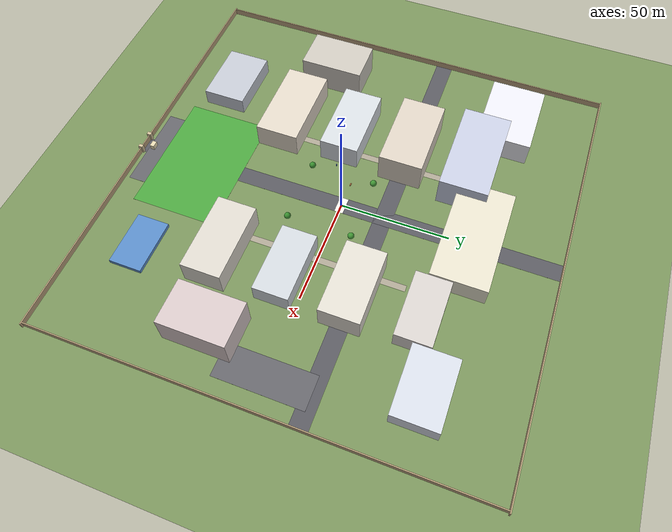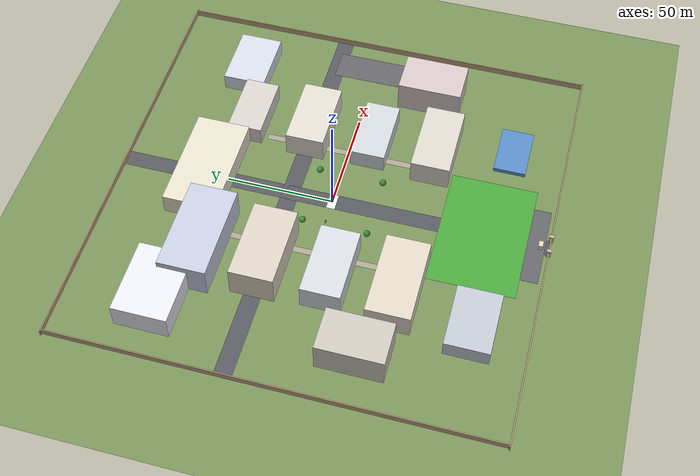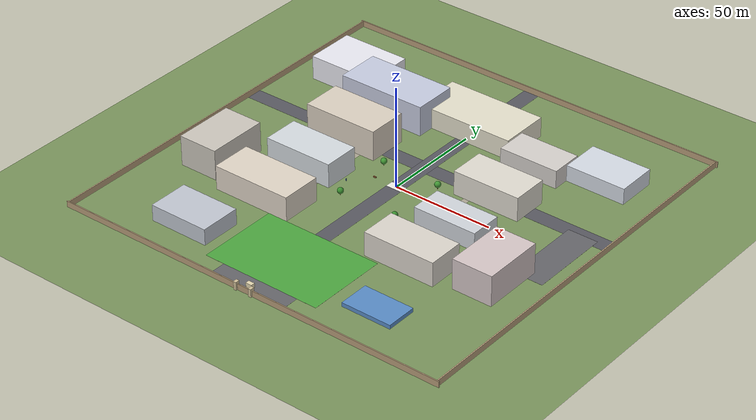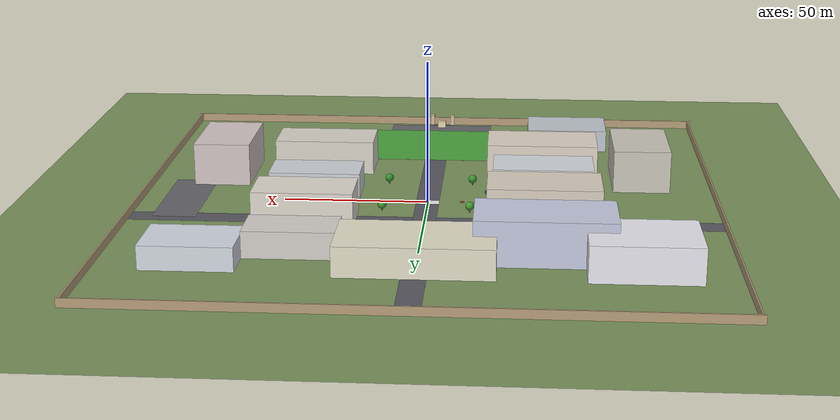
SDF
<?xml version="1.0" ?>
<sdf version="1.8">
  <world name="lpu_campus">
    <physics name="4ms" type="ignored">
      <max_step_size>0.004</max_step_size>
      <real_time_factor>1.0</real_time_factor>
    </physics>

    <plugin filename="gz-sim-physics-system" name="gz::sim::systems::Physics"/>
    <plugin filename="gz-sim-user-commands-system" name="gz::sim::systems::UserCommands"/>
    <plugin filename="gz-sim-scene-broadcaster-system" name="gz::sim::systems::SceneBroadcaster"/>
    <plugin filename="gz-sim-contact-system" name="gz::sim::systems::Contact"/>
    <plugin filename="gz-sim-sensors-system" name="gz::sim::systems::Sensors">
      <render_engine>ogre2</render_engine>
    </plugin>
    <plugin filename="gz-sim-imu-system" name="gz::sim::systems::Imu"/>

    <gravity>0 0 -9.8</gravity>
    <magnetic_field>6e-06 2.3e-05 -4.2e-05</magnetic_field>
    <atmosphere type="adiabatic"/>

    <!-- ===================== SCENE & LIGHTING ===================== -->
    <scene>
      <ambient>0.55 0.55 0.6 1</ambient>
      <background>0.72 0.82 0.92 1</background>
      <shadows>true</shadows>
    </scene>

    <light type="directional" name="sun">
      <cast_shadows>true</cast_shadows>
      <pose>50 50 80 0 0 0</pose>
      <diffuse>0.95 0.92 0.85 1</diffuse>
      <specular>0.3 0.3 0.3 1</specular>
      <direction>-0.4 0.2 -0.9</direction>
    </light>

    <light type="directional" name="fill_light">
      <cast_shadows>false</cast_shadows>
      <pose>-50 -50 60 0 0 0</pose>
      <diffuse>0.3 0.32 0.38 1</diffuse>
      <specular>0.05 0.05 0.05 1</specular>
      <direction>0.3 -0.2 -0.8</direction>
    </light>

    <!-- ===================== GROUND PLANE ===================== -->
    <model name="ground_plane">
      <static>true</static>
      <link name="link">
        <collision name="collision">
          <geometry><plane><normal>0 0 1</normal><size>400 400</size></plane></geometry>
        </collision>
        <visual name="visual">
          <geometry><plane><normal>0 0 1</normal><size>400 400</size></plane></geometry>
          <material>
            <ambient>0.42 0.52 0.32 1</ambient>
            <diffuse>0.48 0.58 0.36 1</diffuse>
          </material>
        </visual>
      </link>
    </model>

    <!-- ===================== CAMPUS BOUNDARY WALL ===================== -->
    <!-- Approximate 200m x 200m campus area boundary -->
    <model name="boundary_north">
      <static>true</static>
      <pose>0 100 1.5 0 0 0</pose>
      <link name="link">
        <collision name="c"><geometry><box><size>202 0.5 3</size></box></geometry></collision>
        <visual name="v">
          <geometry><box><size>202 0.5 3</size></box></geometry>
          <material><ambient>0.65 0.55 0.40 1</ambient><diffuse>0.72 0.62 0.48 1</diffuse></material>
        </visual>
      </link>
    </model>
    <model name="boundary_south">
      <static>true</static>
      <pose>0 -100 1.5 0 0 0</pose>
      <link name="link">
        <collision name="c"><geometry><box><size>202 0.5 3</size></box></geometry></collision>
        <visual name="v">
          <geometry><box><size>202 0.5 3</size></box></geometry>
          <material><ambient>0.65 0.55 0.40 1</ambient><diffuse>0.72 0.62 0.48 1</diffuse></material>
        </visual>
      </link>
    </model>
    <model name="boundary_east">
      <static>true</static>
      <pose>100 0 1.5 0 0 0</pose>
      <link name="link">
        <collision name="c"><geometry><box><size>0.5 200 3</size></box></geometry></collision>
        <visual name="v">
          <geometry><box><size>0.5 200 3</size></box></geometry>
          <material><ambient>0.65 0.55 0.40 1</ambient><diffuse>0.72 0.62 0.48 1</diffuse></material>
        </visual>
      </link>
    </model>
    <model name="boundary_west">
      <static>true</static>
      <pose>-100 0 1.5 0 0 0</pose>
      <link name="link">
        <collision name="c"><geometry><box><size>0.5 200 3</size></box></geometry></collision>
        <visual name="v">
          <geometry><box><size>0.5 200 3</size></box></geometry>
          <material><ambient>0.65 0.55 0.40 1</ambient><diffuse>0.72 0.62 0.48 1</diffuse></material>
        </visual>
      </link>
    </model>

    <!-- ===================== MAIN GATE ===================== -->
    <!-- Gate 1 (Main Entrance) — south side -->
    <model name="main_gate_pillar_left">
      <static>true</static>
      <pose>-4 -100 2 0 0 0</pose>
      <link name="link">
        <collision name="c"><geometry><box><size>1.5 2 4</size></box></geometry></collision>
        <visual name="v">
          <geometry><box><size>1.5 2 4</size></box></geometry>
          <material><ambient>0.75 0.68 0.55 1</ambient><diffuse>0.82 0.75 0.60 1</diffuse></material>
        </visual>
      </link>
    </model>
    <model name="main_gate_pillar_right">
      <static>true</static>
      <pose>4 -100 2 0 0 0</pose>
      <link name="link">
        <collision name="c"><geometry><box><size>1.5 2 4</size></box></geometry></collision>
        <visual name="v">
          <geometry><box><size>1.5 2 4</size></box></geometry>
          <material><ambient>0.75 0.68 0.55 1</ambient><diffuse>0.82 0.75 0.60 1</diffuse></material>
        </visual>
      </link>
    </model>

    <!-- ===================== MAIN ROAD (North-South through campus) ===================== -->
    <model name="main_road">
      <static>true</static>
      <pose>0 0 0.005 0 0 0</pose>
      <link name="link">
        <collision name="c"><geometry><box><size>8 200 0.01</size></box></geometry></collision>
        <visual name="v">
          <geometry><box><size>8 200 0.01</size></box></geometry>
          <material><ambient>0.30 0.30 0.32 1</ambient><diffuse>0.35 0.35 0.38 1</diffuse></material>
        </visual>
      </link>
    </model>

    <!-- Cross road (East-West) -->
    <model name="cross_road">
      <static>true</static>
      <pose>0 20 0.005 0 0 0</pose>
      <link name="link">
        <collision name="c"><geometry><box><size>200 8 0.01</size></box></geometry></collision>
        <visual name="v">
          <geometry><box><size>200 8 0.01</size></box></geometry>
          <material><ambient>0.30 0.30 0.32 1</ambient><diffuse>0.35 0.35 0.38 1</diffuse></material>
        </visual>
      </link>
    </model>

    <!-- Pedestrian pathways -->
    <model name="pathway_block34_to_37">
      <static>true</static>
      <pose>-30 0 0.008 0 0 0</pose>
      <link name="link">
        <visual name="v">
          <geometry><box><size>3 80 0.01</size></box></geometry>
          <material><ambient>0.60 0.58 0.52 1</ambient><diffuse>0.68 0.65 0.58 1</diffuse></material>
        </visual>
      </link>
    </model>
    <model name="pathway_east_blocks">
      <static>true</static>
      <pose>30 0 0.008 0 0 0</pose>
      <link name="link">
        <visual name="v">
          <geometry><box><size>3 80 0.01</size></box></geometry>
          <material><ambient>0.60 0.58 0.52 1</ambient><diffuse>0.68 0.65 0.58 1</diffuse></material>
        </visual>
      </link>
    </model>

    <!-- ===================== ACADEMIC BLOCKS ===================== -->
    <!-- Block 34 — Academic (approximate: 40m x 20m, 4 floors) -->
    <model name="block_34">
      <static>true</static>
      <pose>-40 -40 6 0 0 0</pose>
      <link name="link">
        <collision name="c"><geometry><box><size>40 20 12</size></box></geometry></collision>
        <visual name="v">
          <geometry><box><size>40 20 12</size></box></geometry>
          <material><ambient>0.82 0.78 0.72 1</ambient><diffuse>0.88 0.84 0.78 1</diffuse></material>
        </visual>
      </link>
    </model>

    <!-- Block 35 — Academic (approximate: 35m x 18m, 4 floors) -->
    <model name="block_35">
      <static>true</static>
      <pose>-40 -10 6 0 0 0</pose>
      <link name="link">
        <collision name="c"><geometry><box><size>35 18 12</size></box></geometry></collision>
        <visual name="v">
          <geometry><box><size>35 18 12</size></box></geometry>
          <material><ambient>0.78 0.80 0.82 1</ambient><diffuse>0.84 0.86 0.88 1</diffuse></material>
        </visual>
      </link>
    </model>

    <!-- Block 36 — Academic (approximate: 38m x 20m, 5 floors) -->
    <model name="block_36">
      <static>true</static>
      <pose>-40 20 7.5 0 0 0</pose>
      <link name="link">
        <collision name="c"><geometry><box><size>38 20 15</size></box></geometry></collision>
        <visual name="v">
          <geometry><box><size>38 20 15</size></box></geometry>
          <material><ambient>0.80 0.76 0.70 1</ambient><diffuse>0.86 0.82 0.76 1</diffuse></material>
        </visual>
      </link>
    </model>

    <!-- Block 37 — Academic + CENTRAL LIBRARY (approximate: 45m x 22m, 5 floors) -->
    <!-- The Central Library is verified to be in Block 37 per official LPU sources -->
    <model name="block_37_central_library">
      <static>true</static>
      <pose>-40 50 7.5 0 0 0</pose>
      <link name="link">
        <collision name="c"><geometry><box><size>45 22 15</size></box></geometry></collision>
        <visual name="v">
          <geometry><box><size>45 22 15</size></box></geometry>
          <material><ambient>0.72 0.74 0.80 1</ambient><diffuse>0.78 0.80 0.88 1</diffuse></material>
        </visual>
      </link>
    </model>

    <!-- Block 38 — Academic (approximate: 36m x 18m, 4 floors) -->
    <model name="block_38">
      <static>true</static>
      <pose>40 -40 6 0 0 0</pose>
      <link name="link">
        <collision name="c"><geometry><box><size>36 18 12</size></box></geometry></collision>
        <visual name="v">
          <geometry><box><size>36 18 12</size></box></geometry>
          <material><ambient>0.80 0.78 0.74 1</ambient><diffuse>0.86 0.84 0.80 1</diffuse></material>
        </visual>
      </link>
    </model>

    <!-- Block 39 — Academic / Research (approximate: 32m x 16m, 3 floors) -->
    <model name="block_39">
      <static>true</static>
      <pose>40 -10 4.5 0 0 0</pose>
      <link name="link">
        <collision name="c"><geometry><box><size>32 16 9</size></box></geometry></collision>
        <visual name="v">
          <geometry><box><size>32 16 9</size></box></geometry>
          <material><ambient>0.76 0.78 0.80 1</ambient><diffuse>0.82 0.84 0.86 1</diffuse></material>
        </visual>
      </link>
    </model>

    <!-- Block 40 — Academic (approximate: 34m x 18m, 4 floors) -->
    <model name="block_40">
      <static>true</static>
      <pose>40 20 6 0 0 0</pose>
      <link name="link">
        <collision name="c"><geometry><box><size>34 18 12</size></box></geometry></collision>
        <visual name="v">
          <geometry><box><size>34 18 12</size></box></geometry>
          <material><ambient>0.82 0.80 0.76 1</ambient><diffuse>0.88 0.86 0.82 1</diffuse></material>
        </visual>
      </link>
    </model>

    <!-- Block 41 — Academic / Labs (approximate: 30m x 16m, 3 floors) -->
    <model name="block_41">
      <static>true</static>
      <pose>40 50 4.5 0 0 0</pose>
      <link name="link">
        <collision name="c"><geometry><box><size>30 16 9</size></box></geometry></collision>
        <visual name="v">
          <geometry><box><size>30 16 9</size></box></geometry>
          <material><ambient>0.78 0.76 0.74 1</ambient><diffuse>0.84 0.82 0.80 1</diffuse></material>
        </visual>
      </link>
    </model>

    <!-- ===================== UNI-MALL (Commercial) ===================== -->
    <model name="uni_mall">
      <static>true</static>
      <pose>0 60 5 0 0 0</pose>
      <link name="link">
        <collision name="c"><geometry><box><size>50 25 10</size></box></geometry></collision>
        <visual name="v">
          <geometry><box><size>50 25 10</size></box></geometry>
          <material><ambient>0.85 0.82 0.75 1</ambient><diffuse>0.90 0.88 0.80 1</diffuse></material>
        </visual>
      </link>
    </model>

    <!-- ===================== UNI-POLIS ===================== -->
    <model name="uni_polis">
      <static>true</static>
      <pose>70 60 4 0 0 0</pose>
      <link name="link">
        <collision name="c"><geometry><box><size>30 20 8</size></box></geometry></collision>
        <visual name="v">
          <geometry><box><size>30 20 8</size></box></geometry>
          <material><ambient>0.78 0.80 0.85 1</ambient><diffuse>0.84 0.86 0.90 1</diffuse></material>
        </visual>
      </link>
    </model>

    <!-- ===================== UNI-HOSPITAL ===================== -->
    <model name="uni_hospital">
      <static>true</static>
      <pose>-70 60 6 0 0 0</pose>
      <link name="link">
        <collision name="c"><geometry><box><size>35 25 12</size></box></geometry></collision>
        <visual name="v">
          <geometry><box><size>35 25 12</size></box></geometry>
          <material><ambient>0.88 0.88 0.90 1</ambient><diffuse>0.92 0.92 0.95 1</diffuse></material>
        </visual>
      </link>
    </model>

    <!-- ===================== HOSTELS ===================== -->
    <!-- Boys Hostel Complex (West side) -->
    <model name="boys_hostel_1">
      <static>true</static>
      <pose>-75 -30 7.5 0 0 0</pose>
      <link name="link">
        <collision name="c"><geometry><box><size>20 30 15</size></box></geometry></collision>
        <visual name="v">
          <geometry><box><size>20 30 15</size></box></geometry>
          <material><ambient>0.75 0.72 0.68 1</ambient><diffuse>0.80 0.78 0.74 1</diffuse></material>
        </visual>
      </link>
    </model>
    <!-- Girls Hostel Complex (East side) -->
    <model name="girls_hostel_1">
      <static>true</static>
      <pose>75 -30 7.5 0 0 0</pose>
      <link name="link">
        <collision name="c"><geometry><box><size>20 30 15</size></box></geometry></collision>
        <visual name="v">
          <geometry><box><size>20 30 15</size></box></geometry>
          <material><ambient>0.78 0.72 0.72 1</ambient><diffuse>0.84 0.78 0.78 1</diffuse></material>
        </visual>
      </link>
    </model>

    <!-- ===================== SPORTS COMPLEX ===================== -->
    <!-- Football/Cricket Field -->
    <model name="sports_field">
      <static>true</static>
      <pose>0 -70 0.01 0 0 0</pose>
      <link name="link">
        <visual name="v">
          <geometry><box><size>60 40 0.02</size></box></geometry>
          <material><ambient>0.25 0.55 0.20 1</ambient><diffuse>0.30 0.65 0.25 1</diffuse></material>
        </visual>
      </link>
    </model>
    <!-- Indoor Sports Complex -->
    <model name="indoor_sports">
      <static>true</static>
      <pose>-50 -75 4 0 0 0</pose>
      <link name="link">
        <collision name="c"><geometry><box><size>30 20 8</size></box></geometry></collision>
        <visual name="v">
          <geometry><box><size>30 20 8</size></box></geometry>
          <material><ambient>0.70 0.72 0.75 1</ambient><diffuse>0.76 0.78 0.82 1</diffuse></material>
        </visual>
      </link>
    </model>
    <!-- Swimming Pool Complex -->
    <model name="swimming_pool">
      <static>true</static>
      <pose>50 -75 1 0 0 0</pose>
      <link name="link">
        <collision name="c"><geometry><box><size>25 15 2</size></box></geometry></collision>
        <visual name="v">
          <geometry><box><size>25 15 2</size></box></geometry>
          <material><ambient>0.30 0.50 0.70 1</ambient><diffuse>0.35 0.55 0.78 1</diffuse></material>
        </visual>
      </link>
    </model>

    <!-- ===================== PARKING AREAS ===================== -->
    <model name="parking_main">
      <static>true</static>
      <pose>0 -92 0.008 0 0 0</pose>
      <link name="link">
        <visual name="v">
          <geometry><box><size>40 12 0.02</size></box></geometry>
          <material><ambient>0.35 0.35 0.35 1</ambient><diffuse>0.40 0.40 0.42 1</diffuse></material>
        </visual>
      </link>
    </model>
    <model name="parking_east">
      <static>true</static>
      <pose>85 0 0.008 0 0 0</pose>
      <link name="link">
        <visual name="v">
          <geometry><box><size>15 40 0.02</size></box></geometry>
          <material><ambient>0.35 0.35 0.35 1</ambient><diffuse>0.40 0.40 0.42 1</diffuse></material>
        </visual>
      </link>
    </model>

    <!-- ===================== TREES & LANDSCAPING ===================== -->
    <model name="tree_row_1"><static>true</static>
      <pose>-15 -20 1.5 0 0 0</pose>
      <link name="link">
        <collision name="c"><geometry><cylinder><radius>0.4</radius><length>3</length></cylinder></geometry></collision>
        <visual name="trunk"><pose>0 0 -0.5 0 0 0</pose>
          <geometry><cylinder><radius>0.15</radius><length>2</length></cylinder></geometry>
          <material><ambient>0.40 0.25 0.12 1</ambient><diffuse>0.50 0.30 0.15 1</diffuse></material>
        </visual>
        <visual name="canopy"><pose>0 0 0.8 0 0 0</pose>
          <geometry><sphere><radius>1.5</radius></sphere></geometry>
          <material><ambient>0.18 0.45 0.15 1</ambient><diffuse>0.22 0.55 0.18 1</diffuse></material>
        </visual>
      </link>
    </model>
    <model name="tree_row_2"><static>true</static>
      <pose>15 -20 1.5 0 0 0</pose>
      <link name="link">
        <collision name="c"><geometry><cylinder><radius>0.4</radius><length>3</length></cylinder></geometry></collision>
        <visual name="trunk"><pose>0 0 -0.5 0 0 0</pose>
          <geometry><cylinder><radius>0.15</radius><length>2</length></cylinder></geometry>
          <material><ambient>0.40 0.25 0.12 1</ambient><diffuse>0.50 0.30 0.15 1</diffuse></material>
        </visual>
        <visual name="canopy"><pose>0 0 0.8 0 0 0</pose>
          <geometry><sphere><radius>1.5</radius></sphere></geometry>
          <material><ambient>0.18 0.45 0.15 1</ambient><diffuse>0.22 0.55 0.18 1</diffuse></material>
        </visual>
      </link>
    </model>
    <model name="tree_row_3"><static>true</static>
      <pose>-15 10 1.5 0 0 0</pose>
      <link name="link">
        <collision name="c"><geometry><cylinder><radius>0.4</radius><length>3</length></cylinder></geometry></collision>
        <visual name="trunk"><pose>0 0 -0.5 0 0 0</pose>
          <geometry><cylinder><radius>0.15</radius><length>2</length></cylinder></geometry>
          <material><ambient>0.40 0.25 0.12 1</ambient><diffuse>0.50 0.30 0.15 1</diffuse></material>
        </visual>
        <visual name="canopy"><pose>0 0 0.8 0 0 0</pose>
          <geometry><sphere><radius>1.5</radius></sphere></geometry>
          <material><ambient>0.20 0.48 0.16 1</ambient><diffuse>0.25 0.58 0.20 1</diffuse></material>
        </visual>
      </link>
    </model>
    <model name="tree_row_4"><static>true</static>
      <pose>15 10 1.5 0 0 0</pose>
      <link name="link">
        <collision name="c"><geometry><cylinder><radius>0.4</radius><length>3</length></cylinder></geometry></collision>
        <visual name="trunk"><pose>0 0 -0.5 0 0 0</pose>
          <geometry><cylinder><radius>0.15</radius><length>2</length></cylinder></geometry>
          <material><ambient>0.40 0.25 0.12 1</ambient><diffuse>0.50 0.30 0.15 1</diffuse></material>
        </visual>
        <visual name="canopy"><pose>0 0 0.8 0 0 0</pose>
          <geometry><sphere><radius>1.5</radius></sphere></geometry>
          <material><ambient>0.20 0.48 0.16 1</ambient><diffuse>0.25 0.58 0.20 1</diffuse></material>
        </visual>
      </link>
    </model>

    <!-- ===================== BENCHES & STREET FURNITURE ===================== -->
    <model name="bench_1">
      <static>true</static>
      <pose>-12 0 0.3 0 0 0</pose>
      <link name="link">
        <collision name="c"><geometry><box><size>1.5 0.5 0.6</size></box></geometry></collision>
        <visual name="v">
          <geometry><box><size>1.5 0.5 0.6</size></box></geometry>
          <material><ambient>0.45 0.30 0.15 1</ambient><diffuse>0.55 0.35 0.18 1</diffuse></material>
        </visual>
      </link>
    </model>
    <model name="bench_2">
      <static>true</static>
      <pose>12 0 0.3 0 0 0</pose>
      <link name="link">
        <collision name="c"><geometry><box><size>1.5 0.5 0.6</size></box></geometry></collision>
        <visual name="v">
          <geometry><box><size>1.5 0.5 0.6</size></box></geometry>
          <material><ambient>0.45 0.30 0.15 1</ambient><diffuse>0.55 0.35 0.18 1</diffuse></material>
        </visual>
      </link>
    </model>

    <!-- ===================== SECURITY GATE BOOTH ===================== -->
    <model name="security_booth">
      <static>true</static>
      <pose>0 -96 1.25 0 0 0</pose>
      <link name="link">
        <collision name="c"><geometry><box><size>3 2 2.5</size></box></geometry></collision>
        <visual name="v">
          <geometry><box><size>3 2 2.5</size></box></geometry>
          <material><ambient>0.85 0.80 0.65 1</ambient><diffuse>0.90 0.85 0.70 1</diffuse></material>
        </visual>
      </link>
    </model>

    <!-- ===================== PEDESTRIAN CROSSINGS ===================== -->
    <!-- Zebra crossing at main intersection -->
    <model name="zebra_crossing_1">
      <static>true</static>
      <pose>0 0 0.012 0 0 0</pose>
      <link name="link">
        <visual name="v">
          <geometry><box><size>8 4 0.005</size></box></geometry>
          <material><ambient>0.90 0.90 0.88 1</ambient><diffuse>0.95 0.95 0.92 1</diffuse></material>
        </visual>
      </link>
    </model>

    <!-- ===================== STATIC PERSONS (will be replaced by dynamic agents) ===================== -->
    <model name="student_near_block35">
      <static>true</static>
      <pose>-20 -10 0.85 0 0 0</pose>
      <link name="link">
        <collision name="c"><geometry><cylinder><radius>0.22</radius><length>1.7</length></cylinder></geometry></collision>
        <visual name="body"><pose>0 0 -0.15 0 0 0</pose>
          <geometry><cylinder><radius>0.18</radius><length>1.1</length></cylinder></geometry>
          <material><ambient>0.15 0.28 0.55 1</ambient><diffuse>0.18 0.35 0.70 1</diffuse></material>
        </visual>
        <visual name="head"><pose>0 0 0.62 0 0 0</pose>
          <geometry><sphere><radius>0.14</radius></sphere></geometry>
          <material><ambient>0.78 0.58 0.40 1</ambient><diffuse>0.90 0.68 0.48 1</diffuse></material>
        </visual>
      </link>
    </model>
    <model name="student_near_library">
      <static>true</static>
      <pose>-20 48 0.85 0 0 1.2</pose>
      <link name="link">
        <collision name="c"><geometry><cylinder><radius>0.22</radius><length>1.7</length></cylinder></geometry></collision>
        <visual name="body"><pose>0 0 -0.15 0 0 0</pose>
          <geometry><cylinder><radius>0.18</radius><length>1.1</length></cylinder></geometry>
          <material><ambient>0.55 0.15 0.20 1</ambient><diffuse>0.70 0.18 0.25 1</diffuse></material>
        </visual>
        <visual name="head"><pose>0 0 0.62 0 0 0</pose>
          <geometry><sphere><radius>0.14</radius></sphere></geometry>
          <material><ambient>0.70 0.52 0.35 1</ambient><diffuse>0.82 0.62 0.42 1</diffuse></material>
        </visual>
      </link>
    </model>
    <model name="faculty_near_block38">
      <static>true</static>
      <pose>25 -38 0.85 0 0 -0.5</pose>
      <link name="link">
        <collision name="c"><geometry><cylinder><radius>0.22</radius><length>1.7</length></cylinder></geometry></collision>
        <visual name="body"><pose>0 0 -0.15 0 0 0</pose>
          <geometry><cylinder><radius>0.18</radius><length>1.1</length></cylinder></geometry>
          <material><ambient>0.25 0.25 0.28 1</ambient><diffuse>0.32 0.32 0.35 1</diffuse></material>
        </visual>
        <visual name="head"><pose>0 0 0.62 0 0 0</pose>
          <geometry><sphere><radius>0.14</radius></sphere></geometry>
          <material><ambient>0.72 0.55 0.38 1</ambient><diffuse>0.85 0.65 0.45 1</diffuse></material>
        </visual>
      </link>
    </model>

  </world>
</sdf>
